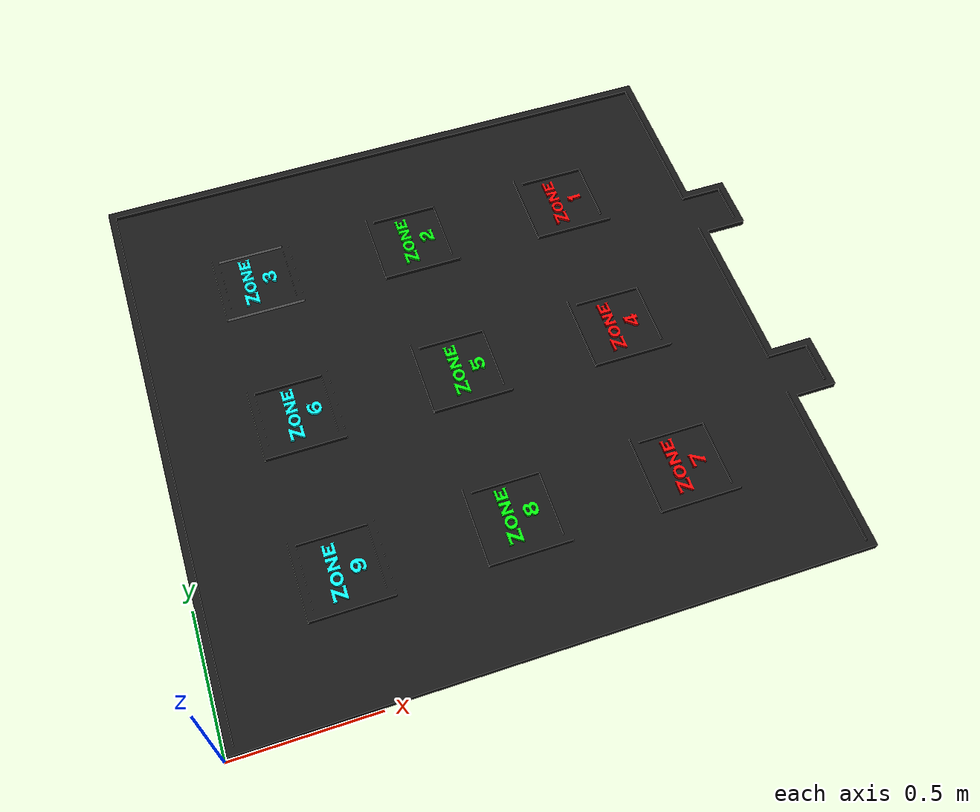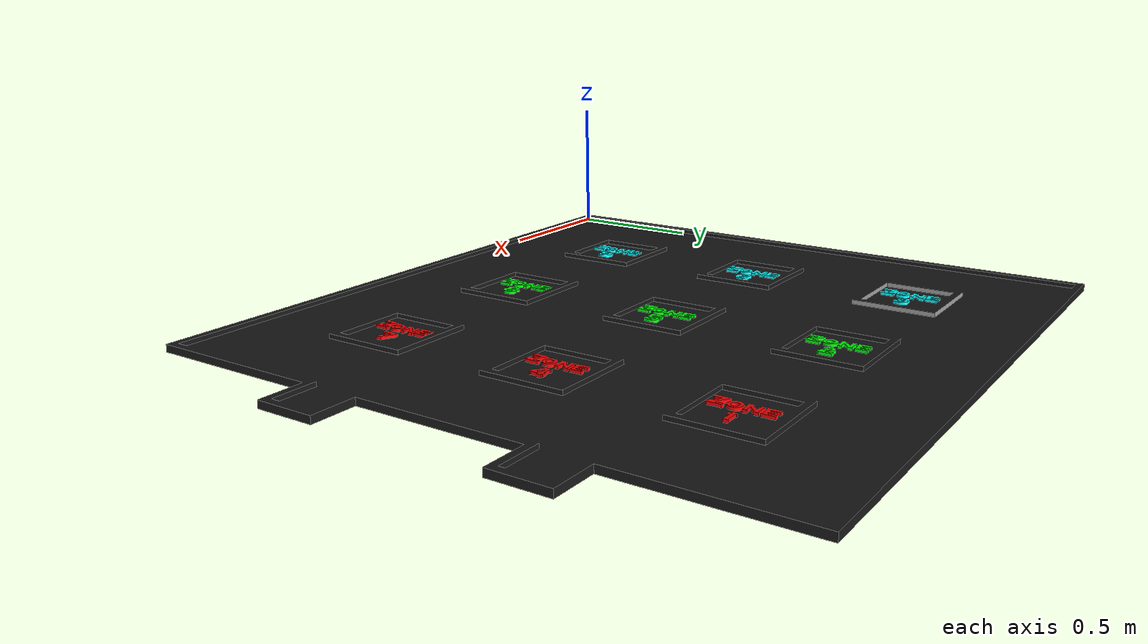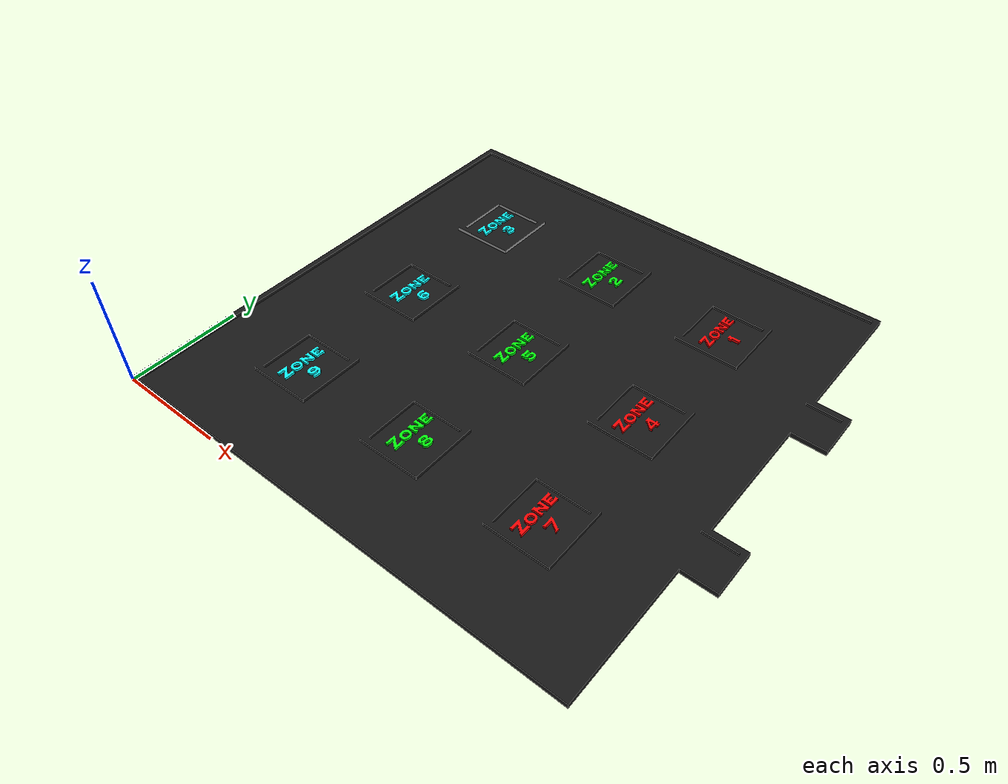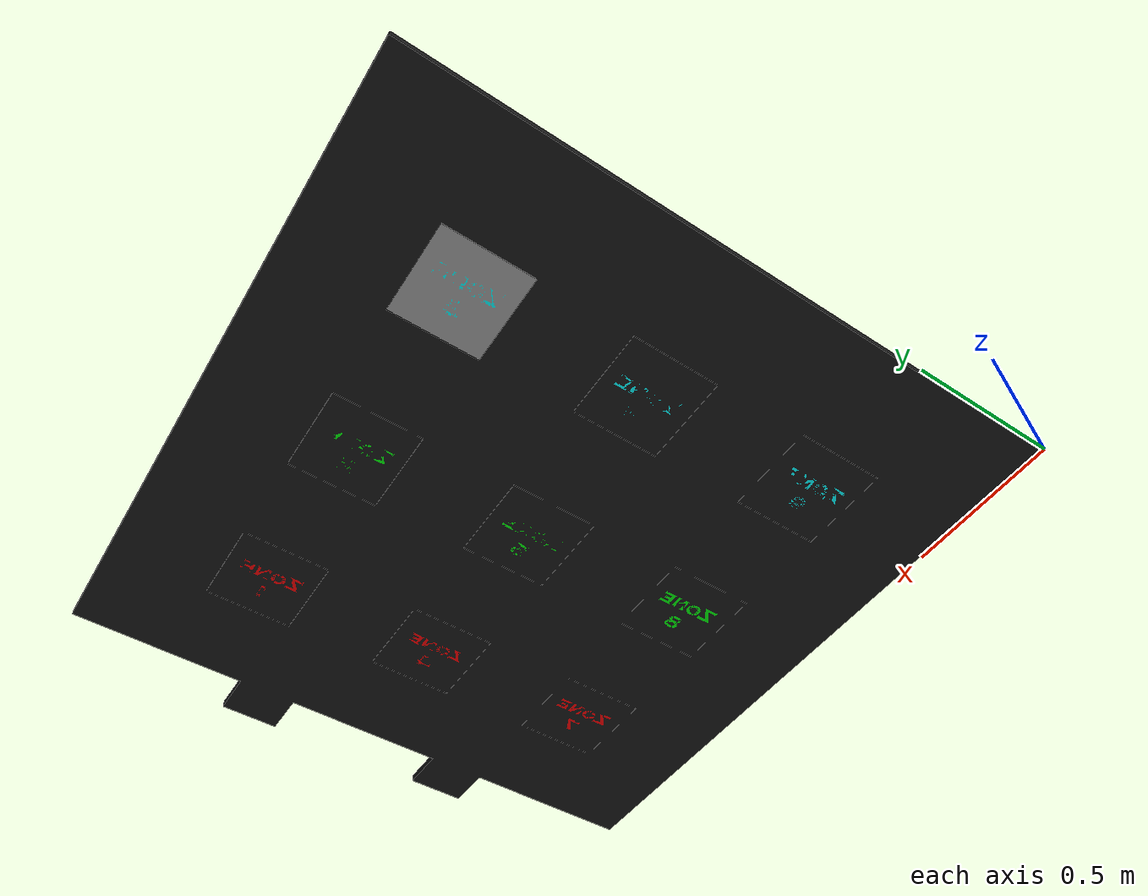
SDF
<?xml version='1.0'?>
<sdf version='1.4'>
  <model name="warehouse">
    <static>true</static>
    <pose>1.10 1.10 0 0 0 -3.14 </pose>

    <link name="warehouse">
        <pose>0 0 0 0 0 0</pose>

    <visual name="visual">
        <geometry>
          <mesh>
                  <uri>model://warehouse/meshes/SimWarehouse.dae</uri>
                  <lighting>1</lighting>
          </mesh>
        </geometry>
      </visual>
    </link>

  </model>
</sdf>
